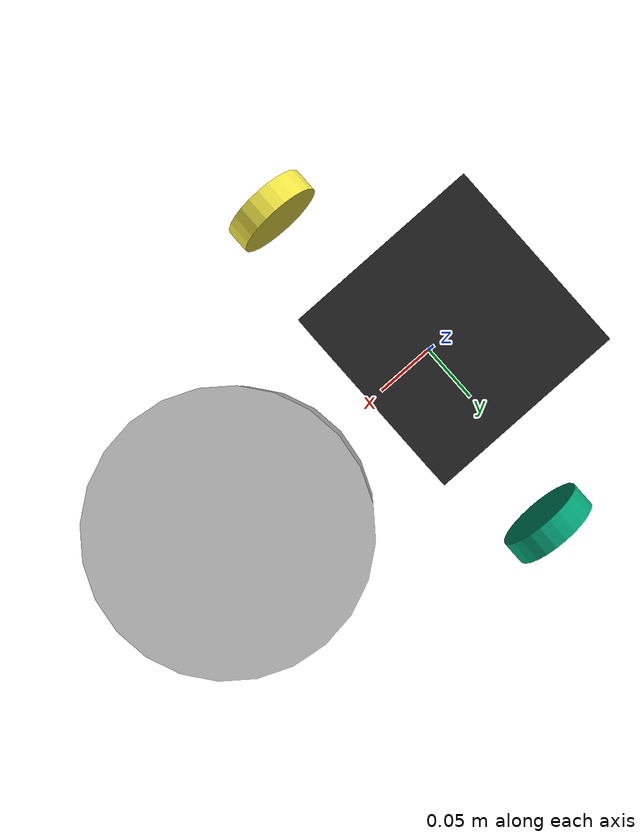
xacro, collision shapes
<?xml version="1.0" ?>
<robot name="turtlebot3_burger" xmlns:xacro="http://ros.org/wiki/xacro">
  <xacro:include filename="$(find robot_description)/urdf/common_properties.xacro"/>

  <link name="base_footprint"/>

  <joint name="base_joint" type="fixed">
    <parent link="base_footprint"/>
    <child link="base_link"/>
    <origin xyz="0.025 0.0 0.00" rpy="0 0 0"/>
  </joint>

  <link name="base_link">
    <visual>
      <origin xyz="0.03 0 0.0" rpy="0 0 0"/>
      <geometry>
        <mesh filename="package://robot_description/meshes/bases/burger_base.stl" scale="0.001 0.001 0.001"/>
      </geometry>
      <material name="light_black"/>
    </visual>

    <collision>
      <origin xyz="-0.032 0 0.070" rpy="0 0 0"/>
      <geometry>
        <box size="0.140 0.140 0.140"/>
      </geometry>
    </collision>

    <inertial>
      <origin xyz="-0.032 0 0" rpy="0 0 0"/>
      <mass value="1"/>
      <inertia ixx="0.01" ixy="0.0" ixz="0.0"
               iyy="0.01" iyz="0.0"
               izz="0.01" />
    </inertial>
  </link>

  <joint name="wheel_left_joint" type="continuous">
    <parent link="base_link"/>
    <child link="wheel_left_link"/>
    <origin xyz="0.0 0.15 0.0675" rpy="${-M_PI*0.5} 0 0"/>
    <axis xyz="0 0 1"/>
  </joint>

  <link name="wheel_left_link">
    <visual>
      <origin xyz="0 0 0" rpy="${M_PI*0.5} 0 0"/>
      <geometry>
        <mesh filename="package://robot_description/meshes/wheels/left_tire.stl" scale="0.001 0.001 0.001"/>
      </geometry>
      <material name="dark"/>
    </visual>

    <collision>
      <origin xyz="0 0 0" rpy="0 0 0"/>
      <geometry>
        <cylinder length="0.018" radius="0.033"/>
      </geometry>
    </collision>

    <inertial>
      <origin xyz="0 0 0" />
      <mass value="0.01" />
      <inertia ixx="0.001" ixy="0.0" ixz="0.0"
               iyy="0.001" iyz="0.0"
               izz="0.001" />
    </inertial>
  </link>

  <joint name="wheel_right_joint" type="continuous">
    <parent link="base_link"/>
    <child link="wheel_right_link"/>
    <origin xyz="0.0 -0.15 0.0675" rpy="${-M_PI*0.5} 0 0"/>
    <axis xyz="0 0 1"/>
  </joint>

  <link name="wheel_right_link">
    <visual>
      <origin xyz="0 0 0" rpy="${M_PI*0.5} 0 0"/>
      <geometry>
        <mesh filename="package://robot_description/meshes/wheels/right_tire.stl" scale="0.001 0.001 0.001"/>
      </geometry>
      <material name="dark"/>
    </visual>

    <collision>
      <origin xyz="0 0 0" rpy="0 0 0"/>
      <geometry>
        <cylinder length="0.018" radius="0.033"/>
      </geometry>
    </collision>

    <inertial>
      <origin xyz="0 0 0" />
      <mass value="0.01" />
      <inertia ixx="0.001" ixy="0.0" ixz="0.0"
               iyy="0.001" iyz="0.0"
               izz="0.001" />
    </inertial>
  </link>

  <joint name="caster_back_joint" type="fixed">
    <parent link="base_link"/>
    <child link="caster_back_link"/>
    <origin xyz="-0.081 0 -0.004" rpy="${-M_PI*0.5} 0 0"/>
  </joint>

  <link name="caster_back_link">
    <collision>
      <origin xyz="0 0 0" rpy="0 0 0"/>
      <geometry>
        <box size="0.030 0.010 0.020"/>
      </geometry>
    </collision>

    <inertial>
      <origin xyz="0 0 0" />
      <mass value="0.01" />
      <inertia ixx="0.001" ixy="0.0" ixz="0.0"
               iyy="0.001" iyz="0.0"
               izz="0.001" />
    </inertial>
  </link>

  <joint name="imu_joint" type="fixed">
    <parent link="base_link"/>
    <child link="imu_link"/>
    <origin xyz="-0.032 0 0.068" rpy="0 0 0"/>
  </joint>

  <link name="imu_link"/>

  <joint name="scan_for_map_joint" type = "fixed">
    <parent link="base_scan"/>
    <child link="scan_for_map"/>
    <origin xyz="0.0 0 -0.250" rpy="0 0 0"/>
  </joint>
  <link name="scan_for_map"/>

  <joint name="scan_joint" type="fixed">
    <parent link="base_link"/>
    <child link="base_scan"/>
    <origin xyz="0.13 0 0.251" rpy="0 0 0"/>
  </joint>

  <link name="base_scan">
    <visual>
      <origin xyz="0 0 0.0" rpy="0 0 0"/>
      <geometry>
        <mesh filename="package://robot_description/meshes/sensors/lds.stl" scale="0.001 0.001 0.001"/>
      </geometry>
      <material name="dark"/>
    </visual>

    <collision>
      <origin xyz="0 0 0" rpy="0 0 0"/>
      <geometry>
        <cylinder length="0.0408" radius="0.070"/>
      </geometry>
    </collision>

    <inertial>
      <mass value="0.01" />
      <origin xyz="0 0 0" />
      <inertia ixx="0.001" ixy="0.0" ixz="0.0"
               iyy="0.001" iyz="0.0"
               izz="0.001" />
    </inertial>
  </link>

  <joint name="rs_for_map_joint_temp0" type = "fixed">
    <parent link="base_scan"/>
    <child link="camera_color_optical_frame_temp0"/>
    <origin xyz="0.07 -0.01 -0.07" rpy="0 0 0"/>
  </joint>
  <link name="camera_color_optical_frame_temp0"/>

  <joint name="rs_for_map_joint_temp1" type = "fixed">
    <parent link="camera_color_optical_frame_temp0"/>
    <child link="camera_color_optical_frame_temp1"/>
    <origin xyz="0.0 0.0 0.0" rpy="0 0 ${-M_PI*0.5}"/>
  </joint>
  <link name="camera_color_optical_frame_temp1"/>

  <joint name="rs_for_map_joint" type = "fixed">
    <parent link="camera_color_optical_frame_temp1"/>
    <child link="camera_color_optical_frame"/>
    <origin xyz="0.0 0.0 0.0" rpy="${-M_PI*0.5} 0 0"/>
  </joint>
  <link name="camera_color_optical_frame"/>

</robot>
